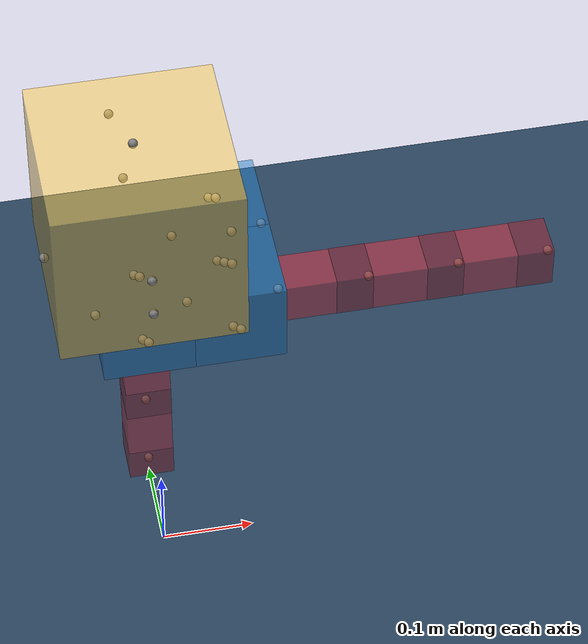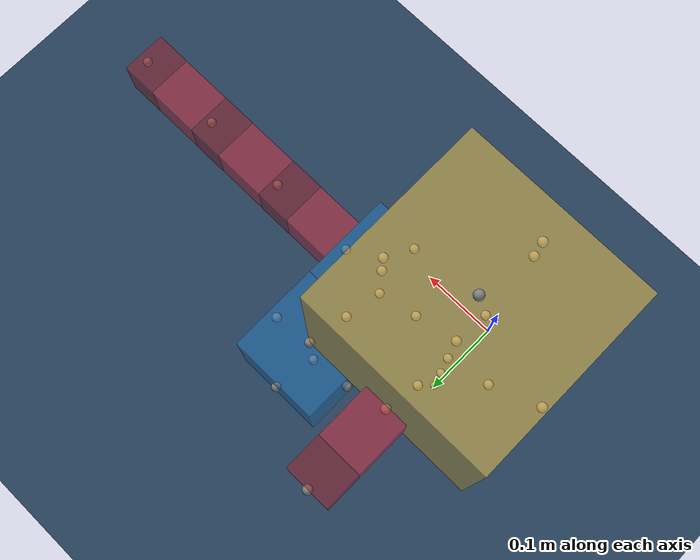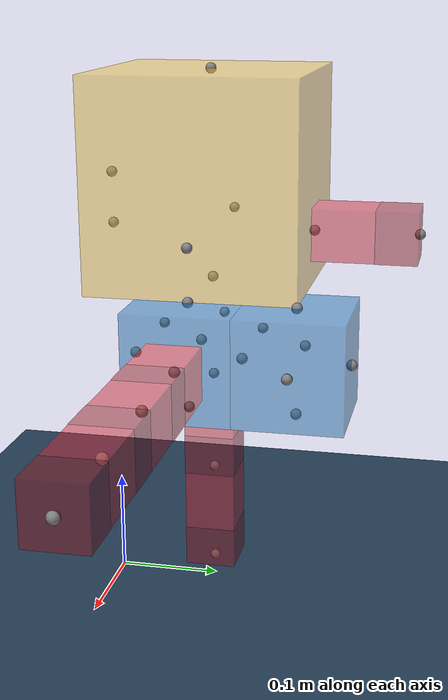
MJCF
<mujoco model="MuJoCo Model">
  <compiler angle="radian"/>

  <option integrator="implicitfast"/>

  <visual>
    <global offwidth="1280" offheight="960"/>
  </visual>

  <default>
    <default class="robot-main">
      <default class="robot-0-3-0-main"/>
      <default class="robot-0-2-5-main"/>
      <default class="robot-2-5-0-main"/>
      <default class="robot-2-6-5-main"/>
      <default class="robot-5-1-0-main"/>
      <default class="robot-6-4-5-main"/>
      <default class="robot-6-8-0-main"/>
      <default class="robot-8-9-0-main"/>
      <default class="robot-9-7-0-main"/>
    </default>
  </default>

  <asset>
    <texture type="2d" colorspace="auto" name="grid" builtin="checker" rgb1="0.1 0.2 0.3" rgb2="0.2 0.3 0.4" width="600" height="600"/>
    <material name="grid" texture="grid" texuniform="true" texrepeat="3 3" reflectance="0.2"/>
  </asset>

  <worldbody>
    <geom name="floor" size="1 1 0.1" type="plane" material="grid"/>
    <site pos="0 0 0.42062"/>
    <light name="light" pos="0 0 1" dir="0 0 -1" castshadow="false"/>
    <body name="robot-world" pos="0 0 0.42062">
      <joint type="free"/>
      <body name="robot-core">
        <geom name="robot-core" size="0.1 0.1 0.1" pos="0 0.1 0" type="box" mass="1" rgba="0.992157 0.792157 0.25098 0.5"/>
        <site name="robot-core-front" pos="0 0.2 -0.05"/>
        <site name="robot-core-back" pos="0 0 -0.05" quat="0 0 0 1"/>
        <site name="robot-core-left" pos="-0.1 0.1 -0.05" quat="0.707107 0 0 0.707107"/>
        <site name="robot-core-right" pos="0.1 0.1 -0.05" quat="-0.707107 0 0 0.707107"/>
        <site name="robot-core-top" pos="0 0.1 0.1" quat="0.707107 0.707107 0 0"/>
        <site name="robot-core-bottom" pos="0 0.1 -0.1" quat="0 0 -0.707107 0.707107"/>
        <body name="robot-0-3-0-hinge" pos="0 0.2 -0.05" quat="0 0 1 0">
          <body name="robot-0-3-0-stator" pos="0 0.03 0">
            <geom name="robot-0-3-0-stator" size="0.02475 0.0297 0.02475" type="box" mass="0.02" rgba="0.87451 0.160784 0.207843 0.5"/>
          </body>
          <body name="robot-0-3-0-rotor" pos="0 0.08 0">
            <joint name="robot-0-3-0-servo" pos="0 -0.02 0" axis="0 0 1"/>
            <geom name="robot-0-3-0-rotor" size="0.025 0.02 0.025" type="box" mass="0.04" rgba="0.627451 0.0941176 0.129412 0.5"/>
            <site name="robot-0-3-0-hinge-front" pos="0 0.02 0"/>
          </body>
        </body>
        <body name="robot-0-2-5-brick" pos="0 0.1 -0.1" quat="0.5 -0.5 -0.5 0.5">
          <geom name="robot-0-2-5-brick" size="0.05 0.05 0.05" pos="0 0.05 0" type="box" mass="0.055" rgba="0.109804 0.466667 0.764706 0.5"/>
          <site name="robot-0-2-5-brick-front" pos="0 0.1 0"/>
          <site name="robot-0-2-5-brick-left" pos="-0.05 0.05 0" quat="0.707107 0 0 0.707107"/>
          <site name="robot-0-2-5-brick-right" pos="0.05 0.05 0" quat="-0.707107 0 0 0.707107"/>
          <site name="robot-0-2-5-brick-top" pos="0 0.05 0.05" quat="0.707107 0.707107 0 0"/>
          <site name="robot-0-2-5-brick-bottom" pos="0 0.05 -0.05" quat="0 0 -0.707107 0.707107"/>
          <body name="robot-2-5-0-hinge" pos="0 0.1 0" quat="0 0 1 0">
            <body name="robot-2-5-0-stator" pos="0 0.03 0">
              <geom name="robot-2-5-0-stator" size="0.02475 0.0297 0.02475" type="box" mass="0.02" rgba="0.87451 0.160784 0.207843 0.5"/>
            </body>
            <body name="robot-2-5-0-rotor" pos="0 0.08 0">
              <joint name="robot-2-5-0-servo" pos="0 -0.02 0" axis="0 0 1"/>
              <geom name="robot-2-5-0-rotor" size="0.025 0.02 0.025" type="box" mass="0.04" rgba="0.627451 0.0941176 0.129412 0.5"/>
              <site name="robot-2-5-0-hinge-front" pos="0 0.02 0"/>
              <body name="robot-5-1-0-hinge" pos="0 0.02 0" quat="0.707107 0 0.707107 0">
                <body name="robot-5-1-0-stator" pos="0 0.03 0">
                  <geom name="robot-5-1-0-stator" size="0.02475 0.0297 0.02475" type="box" mass="0.02" rgba="0.87451 0.160784 0.207843 0.5"/>
                </body>
                <body name="robot-5-1-0-rotor" pos="0 0.08 0">
                  <joint name="robot-5-1-0-servo" pos="0 -0.02 0" axis="0 0 1"/>
                  <geom name="robot-5-1-0-rotor" size="0.025 0.02 0.025" type="box" mass="0.04" rgba="0.627451 0.0941176 0.129412 0.5"/>
                  <site name="robot-5-1-0-hinge-front" pos="0 0.02 0"/>
                </body>
              </body>
            </body>
          </body>
          <body name="robot-2-6-5-brick" pos="0 0.05 -0.05" quat="0.5 -0.5 -0.5 0.5">
            <geom name="robot-2-6-5-brick" size="0.05 0.05 0.05" pos="0 0.05 0" type="box" mass="0.055" rgba="0.109804 0.466667 0.764706 0.5"/>
            <site name="robot-2-6-5-brick-front" pos="0 0.1 0"/>
            <site name="robot-2-6-5-brick-left" pos="-0.05 0.05 0" quat="0.707107 0 0 0.707107"/>
            <site name="robot-2-6-5-brick-right" pos="0.05 0.05 0" quat="-0.707107 0 0 0.707107"/>
            <site name="robot-2-6-5-brick-top" pos="0 0.05 0.05" quat="0.707107 0.707107 0 0"/>
            <site name="robot-2-6-5-brick-bottom" pos="0 0.05 -0.05" quat="0 0 -0.707107 0.707107"/>
            <body name="robot-6-4-5-brick" pos="0 0.05 -0.05" quat="0.5 -0.5 -0.5 0.5">
              <geom name="robot-6-4-5-brick" size="0.05 0.05 0.05" pos="0 0.05 0" type="box" mass="0.055" rgba="0.109804 0.466667 0.764706 0.5"/>
              <site name="robot-6-4-5-brick-front" pos="0 0.1 0"/>
              <site name="robot-6-4-5-brick-left" pos="-0.05 0.05 0" quat="0.707107 0 0 0.707107"/>
              <site name="robot-6-4-5-brick-right" pos="0.05 0.05 0" quat="-0.707107 0 0 0.707107"/>
              <site name="robot-6-4-5-brick-top" pos="0 0.05 0.05" quat="0.707107 0.707107 0 0"/>
              <site name="robot-6-4-5-brick-bottom" pos="0 0.05 -0.05" quat="0 0 -0.707107 0.707107"/>
            </body>
            <body name="robot-6-8-0-hinge" pos="0 0.1 0" quat="-0.707107 0 0.707107 0">
              <body name="robot-6-8-0-stator" pos="0 0.03 0">
                <geom name="robot-6-8-0-stator" size="0.02475 0.0297 0.02475" type="box" mass="0.02" rgba="0.87451 0.160784 0.207843 0.5"/>
              </body>
              <body name="robot-6-8-0-rotor" pos="0 0.08 0">
                <joint name="robot-6-8-0-servo" pos="0 -0.02 0" axis="0 0 1"/>
                <geom name="robot-6-8-0-rotor" size="0.025 0.02 0.025" type="box" mass="0.04" rgba="0.627451 0.0941176 0.129412 0.5"/>
                <site name="robot-6-8-0-hinge-front" pos="0 0.02 0"/>
                <body name="robot-8-9-0-hinge" pos="0 0.02 0" quat="0.707107 0 0.707107 0">
                  <body name="robot-8-9-0-stator" pos="0 0.03 0">
                    <geom name="robot-8-9-0-stator" size="0.02475 0.0297 0.02475" type="box" mass="0.02" rgba="0.87451 0.160784 0.207843 0.5"/>
                  </body>
                  <body name="robot-8-9-0-rotor" pos="0 0.08 0">
                    <joint name="robot-8-9-0-servo" pos="0 -0.02 0" axis="0 0 1"/>
                    <geom name="robot-8-9-0-rotor" size="0.025 0.02 0.025" type="box" mass="0.04" rgba="0.627451 0.0941176 0.129412 0.5"/>
                    <site name="robot-8-9-0-hinge-front" pos="0 0.02 0"/>
                    <body name="robot-9-7-0-hinge" pos="0 0.02 0" quat="0.707107 0 0.707107 0">
                      <body name="robot-9-7-0-stator" pos="0 0.03 0">
                        <geom name="robot-9-7-0-stator" size="0.02475 0.0297 0.02475" type="box" mass="0.02" rgba="0.87451 0.160784 0.207843 0.5"/>
                      </body>
                      <body name="robot-9-7-0-rotor" pos="0 0.08 0">
                        <joint name="robot-9-7-0-servo" pos="0 -0.02 0" axis="0 0 1"/>
                        <geom name="robot-9-7-0-rotor" size="0.025 0.02 0.025" type="box" mass="0.04" rgba="0.627451 0.0941176 0.129412 0.5"/>
                        <site name="robot-9-7-0-hinge-front" pos="0 0.02 0"/>
                      </body>
                    </body>
                  </body>
                </body>
              </body>
            </body>
          </body>
        </body>
      </body>
    </body>
  </worldbody>

  <contact>
    <exclude body1="robot-0-3-0-stator" body2="robot-0-3-0-rotor"/>
    <exclude body1="robot-2-5-0-stator" body2="robot-2-5-0-rotor"/>
    <exclude body1="robot-5-1-0-stator" body2="robot-5-1-0-rotor"/>
    <exclude body1="robot-6-8-0-stator" body2="robot-6-8-0-rotor"/>
    <exclude body1="robot-8-9-0-stator" body2="robot-8-9-0-rotor"/>
    <exclude body1="robot-9-7-0-stator" body2="robot-9-7-0-rotor"/>
  </contact>

  <actuator>
    <general name="robot-0-3-0-servo" joint="robot-0-3-0-servo" ctrlrange="-1.5708 1.5708" dynprm="0 0 0 0 0 0 0 0 0 0" biastype="affine" biasprm="0 -1 -1"/>
    <general name="robot-2-5-0-servo" joint="robot-2-5-0-servo" ctrlrange="-1.5708 1.5708" dynprm="0 0 0 0 0 0 0 0 0 0" biastype="affine" biasprm="0 -1 -1"/>
    <general name="robot-5-1-0-servo" joint="robot-5-1-0-servo" ctrlrange="-1.5708 1.5708" dynprm="0 0 0 0 0 0 0 0 0 0" biastype="affine" biasprm="0 -1 -1"/>
    <general name="robot-6-8-0-servo" joint="robot-6-8-0-servo" ctrlrange="-1.5708 1.5708" dynprm="0 0 0 0 0 0 0 0 0 0" biastype="affine" biasprm="0 -1 -1"/>
    <general name="robot-8-9-0-servo" joint="robot-8-9-0-servo" ctrlrange="-1.5708 1.5708" dynprm="0 0 0 0 0 0 0 0 0 0" biastype="affine" biasprm="0 -1 -1"/>
    <general name="robot-9-7-0-servo" joint="robot-9-7-0-servo" ctrlrange="-1.5708 1.5708" dynprm="0 0 0 0 0 0 0 0 0 0" biastype="affine" biasprm="0 -1 -1"/>
  </actuator>
</mujoco>
